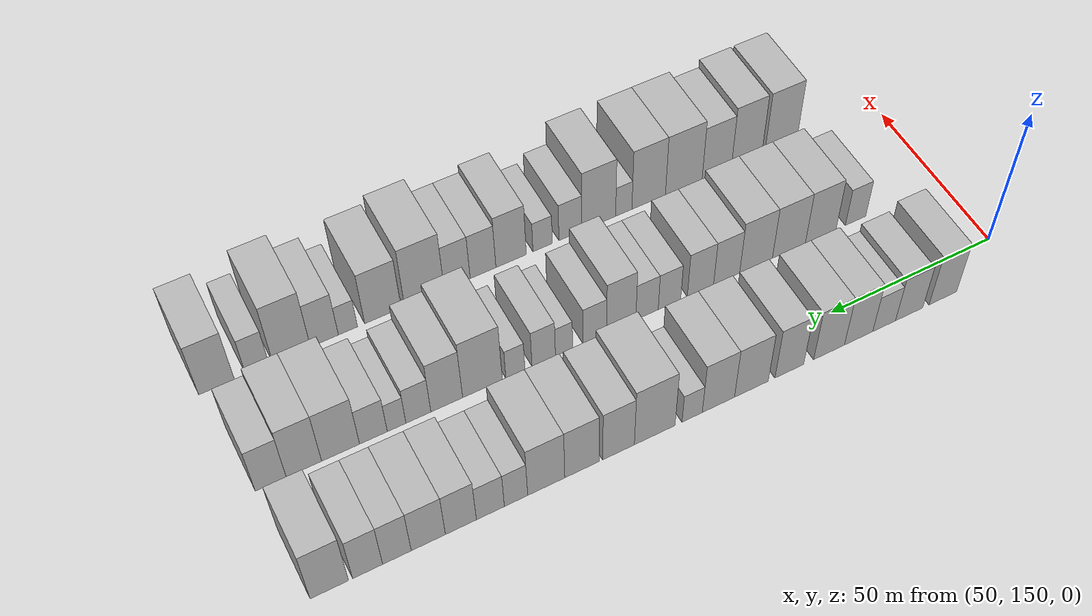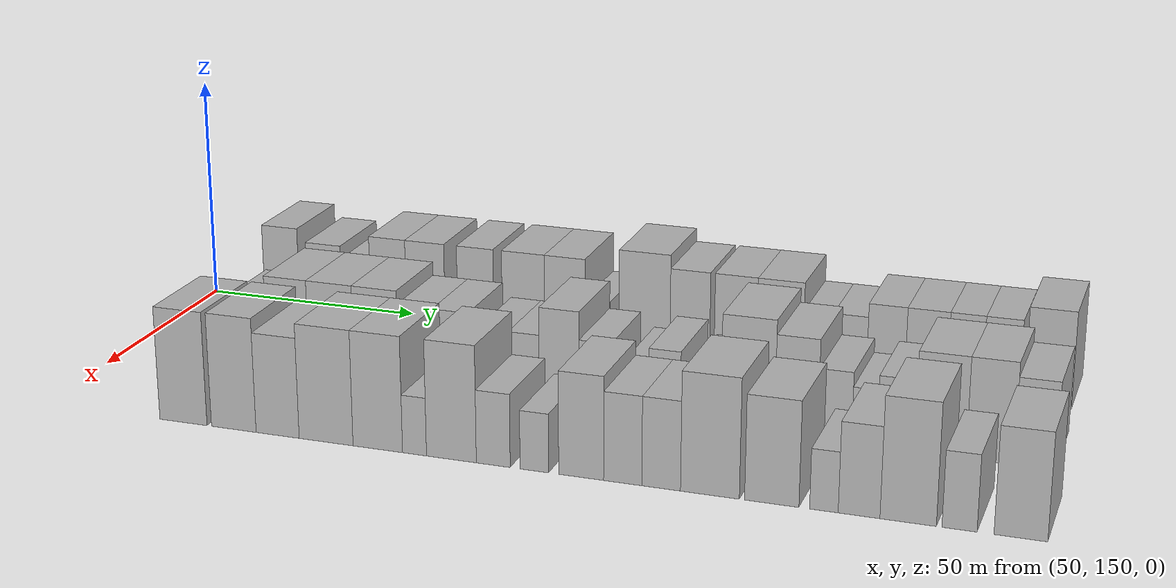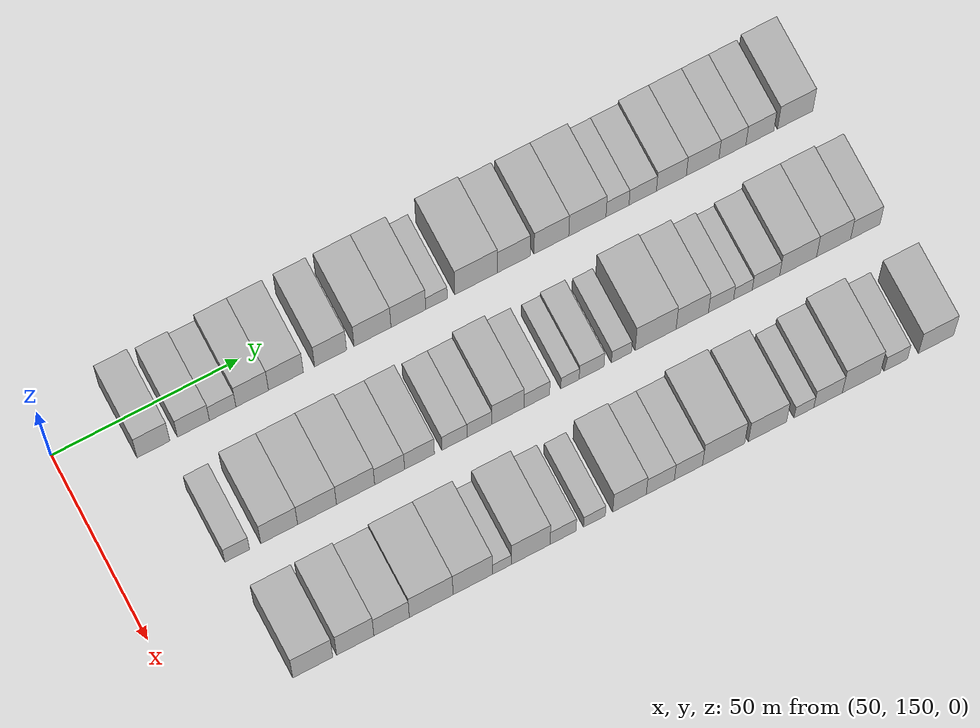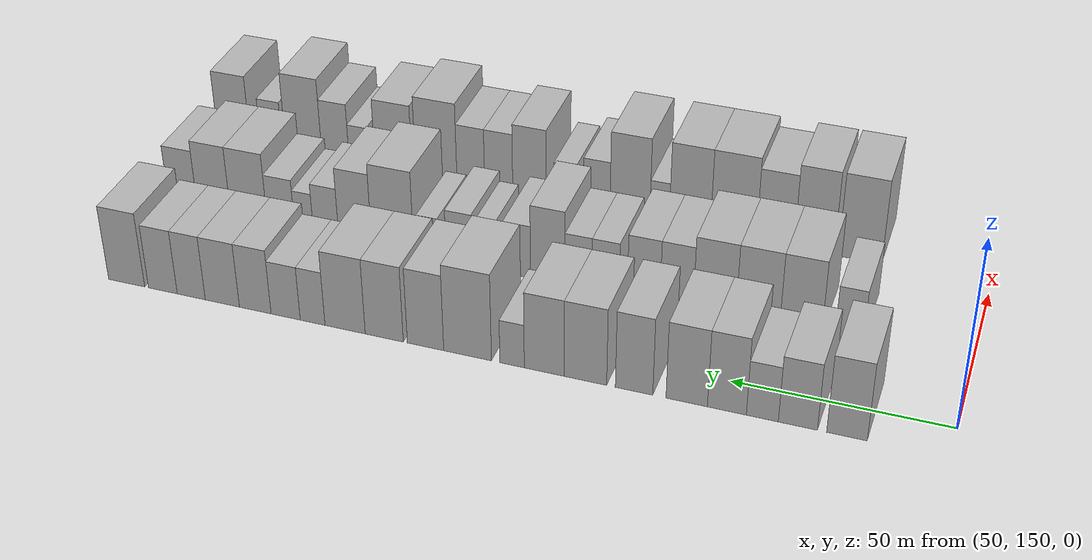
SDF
<sdf version="1.6">
 <world name="default">
  <model name="building_62">
   <static>1</static>
   <pose>50.0000 172.0983 0 0.000000 0.000000 0.000000</pose>
   <link name="link">
    <pose>0 0 10.50 0 0 0</pose>
    <collision name="collision"><geometry><box><size>20.0000 8.7437 21.0000</size></box></geometry></collision>
    <visual name="visual">
     <cast_shadows>0</cast_shadows>
     <geometry><box><size>20.0000 8.7437 21.0000</size></box></geometry>
     <material>
      <script>
       <uri>model://HANNAS_wall/materials/scripts</uri>
       <uri>model://HANNAS_wall/materials/textures</uri>
       <name>vrc/HANNAS_wall</name>
      </script>
     </material>
    </visual>
   </link>
  </model>
  <model name="building_63">
   <static>1</static>
   <pose>50.0000 182.7413 0 0.000000 0.000000 0.000000</pose>
   <link name="link">
    <pose>0 0 9.00 0 0 0</pose>
    <collision name="collision"><geometry><box><size>20.0000 8.5423 18.0000</size></box></geometry></collision>
    <visual name="visual">
     <cast_shadows>0</cast_shadows>
     <geometry><box><size>20.0000 8.5423 18.0000</size></box></geometry>
     <material>
      <script>
       <uri>model://HANNAS_wall/materials/scripts</uri>
       <uri>model://HANNAS_wall/materials/textures</uri>
       <name>vrc/HANNAS_wall</name>
      </script>
     </material>
    </visual>
   </link>
  </model>
  <model name="building_64">
   <static>1</static>
   <pose>50.0000 190.5365 0 0.000000 0.000000 0.000000</pose>
   <link name="link">
    <pose>0 0 7.50 0 0 0</pose>
    <collision name="collision"><geometry><box><size>20.0000 7.0482 15.0000</size></box></geometry></collision>
    <visual name="visual">
     <cast_shadows>0</cast_shadows>
     <geometry><box><size>20.0000 7.0482 15.0000</size></box></geometry>
     <material>
      <script>
       <uri>model://HANNAS_wall/materials/scripts</uri>
       <uri>model://HANNAS_wall/materials/textures</uri>
       <name>vrc/HANNAS_wall</name>
      </script>
     </material>
    </visual>
   </link>
  </model>
  <model name="building_65">
   <static>1</static>
   <pose>50.0000 198.4008 0 0.000000 0.000000 0.000000</pose>
   <link name="link">
    <pose>0 0 10.50 0 0 0</pose>
    <collision name="collision"><geometry><box><size>20.0000 8.6804 21.0000</size></box></geometry></collision>
    <visual name="visual">
     <cast_shadows>0</cast_shadows>
     <geometry><box><size>20.0000 8.6804 21.0000</size></box></geometry>
     <material>
      <script>
       <uri>model://HANNAS_wall/materials/scripts</uri>
       <uri>model://HANNAS_wall/materials/textures</uri>
       <name>vrc/HANNAS_wall</name>
      </script>
     </material>
    </visual>
   </link>
  </model>
  <model name="building_66">
   <static>1</static>
   <pose>50.0000 207.3996 0 0.000000 0.000000 0.000000</pose>
   <link name="link">
    <pose>0 0 10.50 0 0 0</pose>
    <collision name="collision"><geometry><box><size>20.0000 9.3172 21.0000</size></box></geometry></collision>
    <visual name="visual">
     <cast_shadows>0</cast_shadows>
     <geometry><box><size>20.0000 9.3172 21.0000</size></box></geometry>
     <material>
      <script>
       <uri>model://HANNAS_wall/materials/scripts</uri>
       <uri>model://HANNAS_wall/materials/textures</uri>
       <name>vrc/HANNAS_wall</name>
      </script>
     </material>
    </visual>
   </link>
  </model>
  <model name="building_67">
   <static>1</static>
   <pose>50.0000 219.3395 0 0.000000 0.000000 0.000000</pose>
   <link name="link">
    <pose>0 0 10.50 0 0 0</pose>
    <collision name="collision"><geometry><box><size>20.0000 8.5627 21.0000</size></box></geometry></collision>
    <visual name="visual">
     <cast_shadows>0</cast_shadows>
     <geometry><box><size>20.0000 8.5627 21.0000</size></box></geometry>
     <material>
      <script>
       <uri>model://HANNAS_wall/materials/scripts</uri>
       <uri>model://HANNAS_wall/materials/textures</uri>
       <name>vrc/HANNAS_wall</name>
      </script>
     </material>
    </visual>
   </link>
  </model>
  <model name="building_68">
   <static>1</static>
   <pose>50.0000 230.5648 0 0.000000 0.000000 0.000000</pose>
   <link name="link">
    <pose>0 0 10.50 0 0 0</pose>
    <collision name="collision"><geometry><box><size>20.0000 9.8878 21.0000</size></box></geometry></collision>
    <visual name="visual">
     <cast_shadows>0</cast_shadows>
     <geometry><box><size>20.0000 9.8878 21.0000</size></box></geometry>
     <material>
      <script>
       <uri>model://HANNAS_wall/materials/scripts</uri>
       <uri>model://HANNAS_wall/materials/textures</uri>
       <name>vrc/HANNAS_wall</name>
      </script>
     </material>
    </visual>
   </link>
  </model>
  <model name="building_69">
   <static>1</static>
   <pose>50.0000 240.1736 0 0.000000 0.000000 0.000000</pose>
   <link name="link">
    <pose>0 0 10.50 0 0 0</pose>
    <collision name="collision"><geometry><box><size>20.0000 9.3299 21.0000</size></box></geometry></collision>
    <visual name="visual">
     <cast_shadows>0</cast_shadows>
     <geometry><box><size>20.0000 9.3299 21.0000</size></box></geometry>
     <material>
      <script>
       <uri>model://HANNAS_wall/materials/scripts</uri>
       <uri>model://HANNAS_wall/materials/textures</uri>
       <name>vrc/HANNAS_wall</name>
      </script>
     </material>
    </visual>
   </link>
  </model>
  <model name="building_70">
   <static>1</static>
   <pose>50.0000 247.7334 0 0.000000 0.000000 0.000000</pose>
   <link name="link">
    <pose>0 0 6.00 0 0 0</pose>
    <collision name="collision"><geometry><box><size>20.0000 5.7898 12.0000</size></box></geometry></collision>
    <visual name="visual">
     <cast_shadows>0</cast_shadows>
     <geometry><box><size>20.0000 5.7898 12.0000</size></box></geometry>
     <material>
      <script>
       <uri>model://HANNAS_wall/materials/scripts</uri>
       <uri>model://HANNAS_wall/materials/textures</uri>
       <name>vrc/HANNAS_wall</name>
      </script>
     </material>
    </visual>
   </link>
  </model>
  <model name="building_71">
   <static>1</static>
   <pose>50.0000 258.3664 0 0.000000 0.000000 0.000000</pose>
   <link name="link">
    <pose>0 0 12.00 0 0 0</pose>
    <collision name="collision"><geometry><box><size>20.0000 11.4762 24.0000</size></box></geometry></collision>
    <visual name="visual">
     <cast_shadows>0</cast_shadows>
     <geometry><box><size>20.0000 11.4762 24.0000</size></box></geometry>
     <material>
      <script>
       <uri>model://HANNAS_wall/materials/scripts</uri>
       <uri>model://HANNAS_wall/materials/textures</uri>
       <name>vrc/HANNAS_wall</name>
      </script>
     </material>
    </visual>
   </link>
  </model>
  <model name="building_72">
   <static>1</static>
   <pose>50.0000 268.5220 0 0.000000 0.000000 0.000000</pose>
   <link name="link">
    <pose>0 0 10.50 0 0 0</pose>
    <collision name="collision"><geometry><box><size>20.0000 8.8351 21.0000</size></box></geometry></collision>
    <visual name="visual">
     <cast_shadows>0</cast_shadows>
     <geometry><box><size>20.0000 8.8351 21.0000</size></box></geometry>
     <material>
      <script>
       <uri>model://HANNAS_wall/materials/scripts</uri>
       <uri>model://HANNAS_wall/materials/textures</uri>
       <name>vrc/HANNAS_wall</name>
      </script>
     </material>
    </visual>
   </link>
  </model>
  <model name="building_73">
   <static>1</static>
   <pose>50.0000 278.6238 0 0.000000 0.000000 0.000000</pose>
   <link name="link">
    <pose>0 0 10.50 0 0 0</pose>
    <collision name="collision"><geometry><box><size>20.0000 9.3685 21.0000</size></box></geometry></collision>
    <visual name="visual">
     <cast_shadows>0</cast_shadows>
     <geometry><box><size>20.0000 9.3685 21.0000</size></box></geometry>
     <material>
      <script>
       <uri>model://HANNAS_wall/materials/scripts</uri>
       <uri>model://HANNAS_wall/materials/textures</uri>
       <name>vrc/HANNAS_wall</name>
      </script>
     </material>
    </visual>
   </link>
  </model>
  <model name="building_74">
   <static>1</static>
   <pose>50.0000 288.3235 0 0.000000 0.000000 0.000000</pose>
   <link name="link">
    <pose>0 0 10.50 0 0 0</pose>
    <collision name="collision"><geometry><box><size>20.0000 10.0309 21.0000</size></box></geometry></collision>
    <visual name="visual">
     <cast_shadows>0</cast_shadows>
     <geometry><box><size>20.0000 10.0309 21.0000</size></box></geometry>
     <material>
      <script>
       <uri>model://HANNAS_wall/materials/scripts</uri>
       <uri>model://HANNAS_wall/materials/textures</uri>
       <name>vrc/HANNAS_wall</name>
      </script>
     </material>
    </visual>
   </link>
  </model>
  <model name="building_75">
   <static>1</static>
   <pose>50.0000 296.4525 0 0.000000 0.000000 0.000000</pose>
   <link name="link">
    <pose>0 0 7.50 0 0 0</pose>
    <collision name="collision"><geometry><box><size>20.0000 6.2270 15.0000</size></box></geometry></collision>
    <visual name="visual">
     <cast_shadows>0</cast_shadows>
     <geometry><box><size>20.0000 6.2270 15.0000</size></box></geometry>
     <material>
      <script>
       <uri>model://HANNAS_wall/materials/scripts</uri>
       <uri>model://HANNAS_wall/materials/textures</uri>
       <name>vrc/HANNAS_wall</name>
      </script>
     </material>
    </visual>
   </link>
  </model>
  <model name="building_76">
   <static>1</static>
   <pose>50.0000 303.2668 0 0.000000 0.000000 0.000000</pose>
   <link name="link">
    <pose>0 0 7.50 0 0 0</pose>
    <collision name="collision"><geometry><box><size>20.0000 7.4015 15.0000</size></box></geometry></collision>
    <visual name="visual">
     <cast_shadows>0</cast_shadows>
     <geometry><box><size>20.0000 7.4015 15.0000</size></box></geometry>
     <material>
      <script>
       <uri>model://HANNAS_wall/materials/scripts</uri>
       <uri>model://HANNAS_wall/materials/textures</uri>
       <name>vrc/HANNAS_wall</name>
      </script>
     </material>
    </visual>
   </link>
  </model>
  <model name="building_77">
   <static>1</static>
   <pose>50.0000 311.0209 0 0.000000 0.000000 0.000000</pose>
   <link name="link">
    <pose>0 0 9.00 0 0 0</pose>
    <collision name="collision"><geometry><box><size>20.0000 8.1066 18.0000</size></box></geometry></collision>
    <visual name="visual">
     <cast_shadows>0</cast_shadows>
     <geometry><box><size>20.0000 8.1066 18.0000</size></box></geometry>
     <material>
      <script>
       <uri>model://HANNAS_wall/materials/scripts</uri>
       <uri>model://HANNAS_wall/materials/textures</uri>
       <name>vrc/HANNAS_wall</name>
      </script>
     </material>
    </visual>
   </link>
  </model>
  <model name="building_78">
   <static>1</static>
   <pose>50.0000 319.4926 0 0.000000 0.000000 0.000000</pose>
   <link name="link">
    <pose>0 0 9.00 0 0 0</pose>
    <collision name="collision"><geometry><box><size>20.0000 8.8368 18.0000</size></box></geometry></collision>
    <visual name="visual">
     <cast_shadows>0</cast_shadows>
     <geometry><box><size>20.0000 8.8368 18.0000</size></box></geometry>
     <material>
      <script>
       <uri>model://HANNAS_wall/materials/scripts</uri>
       <uri>model://HANNAS_wall/materials/textures</uri>
       <name>vrc/HANNAS_wall</name>
      </script>
     </material>
    </visual>
   </link>
  </model>
  <model name="building_79">
   <static>1</static>
   <pose>50.0000 327.5708 0 0.000000 0.000000 0.000000</pose>
   <link name="link">
    <pose>0 0 9.00 0 0 0</pose>
    <collision name="collision"><geometry><box><size>20.0000 7.3197 18.0000</size></box></geometry></collision>
    <visual name="visual">
     <cast_shadows>0</cast_shadows>
     <geometry><box><size>20.0000 7.3197 18.0000</size></box></geometry>
     <material>
      <script>
       <uri>model://HANNAS_wall/materials/scripts</uri>
       <uri>model://HANNAS_wall/materials/textures</uri>
       <name>vrc/HANNAS_wall</name>
      </script>
     </material>
    </visual>
   </link>
  </model>
  <model name="building_80">
   <static>1</static>
   <pose>50.0000 335.0202 0 0.000000 0.000000 0.000000</pose>
   <link name="link">
    <pose>0 0 9.00 0 0 0</pose>
    <collision name="collision"><geometry><box><size>20.0000 7.5791 18.0000</size></box></geometry></collision>
    <visual name="visual">
     <cast_shadows>0</cast_shadows>
     <geometry><box><size>20.0000 7.5791 18.0000</size></box></geometry>
     <material>
      <script>
       <uri>model://HANNAS_wall/materials/scripts</uri>
       <uri>model://HANNAS_wall/materials/textures</uri>
       <name>vrc/HANNAS_wall</name>
      </script>
     </material>
    </visual>
   </link>
  </model>
  <model name="building_81">
   <static>1</static>
   <pose>50.0000 344.6110 0 0.000000 0.000000 0.000000</pose>
   <link name="link">
    <pose>0 0 10.50 0 0 0</pose>
    <collision name="collision"><geometry><box><size>20.0000 9.6024 21.0000</size></box></geometry></collision>
    <visual name="visual">
     <cast_shadows>0</cast_shadows>
     <geometry><box><size>20.0000 9.6024 21.0000</size></box></geometry>
     <material>
      <script>
       <uri>model://HANNAS_wall/materials/scripts</uri>
       <uri>model://HANNAS_wall/materials/textures</uri>
       <name>vrc/HANNAS_wall</name>
      </script>
     </material>
    </visual>
   </link>
  </model>
  <model name="building_140">
   <static>1</static>
   <pose>82.0000 177.8730 0 0.000000 0.000000 0.000000</pose>
   <link name="link">
    <pose>0 0 7.50 0 0 0</pose>
    <collision name="collision"><geometry><box><size>20.0000 6.5550 15.0000</size></box></geometry></collision>
    <visual name="visual">
     <cast_shadows>0</cast_shadows>
     <geometry><box><size>20.0000 6.5550 15.0000</size></box></geometry>
     <material>
      <script>
       <uri>model://HANNAS_wall/materials/scripts</uri>
       <uri>model://HANNAS_wall/materials/textures</uri>
       <name>vrc/HANNAS_wall</name>
      </script>
     </material>
    </visual>
   </link>
  </model>
  <model name="building_141">
   <static>1</static>
   <pose>82.0000 189.0388 0 0.000000 0.000000 0.000000</pose>
   <link name="link">
    <pose>0 0 10.50 0 0 0</pose>
    <collision name="collision"><geometry><box><size>20.0000 9.7765 21.0000</size></box></geometry></collision>
    <visual name="visual">
     <cast_shadows>0</cast_shadows>
     <geometry><box><size>20.0000 9.7765 21.0000</size></box></geometry>
     <material>
      <script>
       <uri>model://HANNAS_wall/materials/scripts</uri>
       <uri>model://HANNAS_wall/materials/textures</uri>
       <name>vrc/HANNAS_wall</name>
      </script>
     </material>
    </visual>
   </link>
  </model>
  <model name="building_142">
   <static>1</static>
   <pose>82.0000 199.1031 0 0.000000 0.000000 0.000000</pose>
   <link name="link">
    <pose>0 0 10.50 0 0 0</pose>
    <collision name="collision"><geometry><box><size>20.0000 10.3522 21.0000</size></box></geometry></collision>
    <visual name="visual">
     <cast_shadows>0</cast_shadows>
     <geometry><box><size>20.0000 10.3522 21.0000</size></box></geometry>
     <material>
      <script>
       <uri>model://HANNAS_wall/materials/scripts</uri>
       <uri>model://HANNAS_wall/materials/textures</uri>
       <name>vrc/HANNAS_wall</name>
      </script>
     </material>
    </visual>
   </link>
  </model>
  <model name="building_143">
   <static>1</static>
   <pose>82.0000 209.3619 0 0.000000 0.000000 0.000000</pose>
   <link name="link">
    <pose>0 0 10.50 0 0 0</pose>
    <collision name="collision"><geometry><box><size>20.0000 10.1655 21.0000</size></box></geometry></collision>
    <visual name="visual">
     <cast_shadows>0</cast_shadows>
     <geometry><box><size>20.0000 10.1655 21.0000</size></box></geometry>
     <material>
      <script>
       <uri>model://HANNAS_wall/materials/scripts</uri>
       <uri>model://HANNAS_wall/materials/textures</uri>
       <name>vrc/HANNAS_wall</name>
      </script>
     </material>
    </visual>
   </link>
  </model>
  <model name="building_144">
   <static>1</static>
   <pose>82.0000 218.4372 0 0.000000 0.000000 0.000000</pose>
   <link name="link">
    <pose>0 0 9.00 0 0 0</pose>
    <collision name="collision"><geometry><box><size>20.0000 7.9851 18.0000</size></box></geometry></collision>
    <visual name="visual">
     <cast_shadows>0</cast_shadows>
     <geometry><box><size>20.0000 7.9851 18.0000</size></box></geometry>
     <material>
      <script>
       <uri>model://HANNAS_wall/materials/scripts</uri>
       <uri>model://HANNAS_wall/materials/textures</uri>
       <name>vrc/HANNAS_wall</name>
      </script>
     </material>
    </visual>
   </link>
  </model>
  <model name="building_145">
   <static>1</static>
   <pose>82.0000 226.4084 0 0.000000 0.000000 0.000000</pose>
   <link name="link">
    <pose>0 0 9.00 0 0 0</pose>
    <collision name="collision"><geometry><box><size>20.0000 7.9573 18.0000</size></box></geometry></collision>
    <visual name="visual">
     <cast_shadows>0</cast_shadows>
     <geometry><box><size>20.0000 7.9573 18.0000</size></box></geometry>
     <material>
      <script>
       <uri>model://HANNAS_wall/materials/scripts</uri>
       <uri>model://HANNAS_wall/materials/textures</uri>
       <name>vrc/HANNAS_wall</name>
      </script>
     </material>
    </visual>
   </link>
  </model>
  <model name="building_146">
   <static>1</static>
   <pose>82.0000 235.7491 0 0.000000 0.000000 0.000000</pose>
   <link name="link">
    <pose>0 0 7.50 0 0 0</pose>
    <collision name="collision"><geometry><box><size>20.0000 6.7240 15.0000</size></box></geometry></collision>
    <visual name="visual">
     <cast_shadows>0</cast_shadows>
     <geometry><box><size>20.0000 6.7240 15.0000</size></box></geometry>
     <material>
      <script>
       <uri>model://HANNAS_wall/materials/scripts</uri>
       <uri>model://HANNAS_wall/materials/textures</uri>
       <name>vrc/HANNAS_wall</name>
      </script>
     </material>
    </visual>
   </link>
  </model>
  <model name="building_147">
   <static>1</static>
   <pose>82.0000 242.4390 0 0.000000 0.000000 0.000000</pose>
   <link name="link">
    <pose>0 0 7.50 0 0 0</pose>
    <collision name="collision"><geometry><box><size>20.0000 6.6559 15.0000</size></box></geometry></collision>
    <visual name="visual">
     <cast_shadows>0</cast_shadows>
     <geometry><box><size>20.0000 6.6559 15.0000</size></box></geometry>
     <material>
      <script>
       <uri>model://HANNAS_wall/materials/scripts</uri>
       <uri>model://HANNAS_wall/materials/textures</uri>
       <name>vrc/HANNAS_wall</name>
      </script>
     </material>
    </visual>
   </link>
  </model>
  <model name="building_148">
   <static>1</static>
   <pose>82.0000 250.0694 0 0.000000 0.000000 0.000000</pose>
   <link name="link">
    <pose>0 0 10.50 0 0 0</pose>
    <collision name="collision"><geometry><box><size>20.0000 8.6049 21.0000</size></box></geometry></collision>
    <visual name="visual">
     <cast_shadows>0</cast_shadows>
     <geometry><box><size>20.0000 8.6049 21.0000</size></box></geometry>
     <material>
      <script>
       <uri>model://HANNAS_wall/materials/scripts</uri>
       <uri>model://HANNAS_wall/materials/textures</uri>
       <name>vrc/HANNAS_wall</name>
      </script>
     </material>
    </visual>
   </link>
  </model>
  <model name="building_149">
   <static>1</static>
   <pose>82.0000 257.7921 0 0.000000 0.000000 0.000000</pose>
   <link name="link">
    <pose>0 0 7.50 0 0 0</pose>
    <collision name="collision"><geometry><box><size>20.0000 6.8405 15.0000</size></box></geometry></collision>
    <visual name="visual">
     <cast_shadows>0</cast_shadows>
     <geometry><box><size>20.0000 6.8405 15.0000</size></box></geometry>
     <material>
      <script>
       <uri>model://HANNAS_wall/materials/scripts</uri>
       <uri>model://HANNAS_wall/materials/textures</uri>
       <name>vrc/HANNAS_wall</name>
      </script>
     </material>
    </visual>
   </link>
  </model>
  <model name="building_150">
   <static>1</static>
   <pose>82.0000 266.6712 0 0.000000 0.000000 0.000000</pose>
   <link name="link">
    <pose>0 0 6.00 0 0 0</pose>
    <collision name="collision"><geometry><box><size>20.0000 4.9177 12.0000</size></box></geometry></collision>
    <visual name="visual">
     <cast_shadows>0</cast_shadows>
     <geometry><box><size>20.0000 4.9177 12.0000</size></box></geometry>
     <material>
      <script>
       <uri>model://HANNAS_wall/materials/scripts</uri>
       <uri>model://HANNAS_wall/materials/textures</uri>
       <name>vrc/HANNAS_wall</name>
      </script>
     </material>
    </visual>
   </link>
  </model>
  <model name="building_151">
   <static>1</static>
   <pose>82.0000 272.4673 0 0.000000 0.000000 0.000000</pose>
   <link name="link">
    <pose>0 0 7.50 0 0 0</pose>
    <collision name="collision"><geometry><box><size>20.0000 6.6744 15.0000</size></box></geometry></collision>
    <visual name="visual">
     <cast_shadows>0</cast_shadows>
     <geometry><box><size>20.0000 6.6744 15.0000</size></box></geometry>
     <material>
      <script>
       <uri>model://HANNAS_wall/materials/scripts</uri>
       <uri>model://HANNAS_wall/materials/textures</uri>
       <name>vrc/HANNAS_wall</name>
      </script>
     </material>
    </visual>
   </link>
  </model>
  <model name="building_152">
   <static>1</static>
   <pose>82.0000 280.4927 0 0.000000 0.000000 0.000000</pose>
   <link name="link">
    <pose>0 0 6.00 0 0 0</pose>
    <collision name="collision"><geometry><box><size>20.0000 5.3763 12.0000</size></box></geometry></collision>
    <visual name="visual">
     <cast_shadows>0</cast_shadows>
     <geometry><box><size>20.0000 5.3763 12.0000</size></box></geometry>
     <material>
      <script>
       <uri>model://HANNAS_wall/materials/scripts</uri>
       <uri>model://HANNAS_wall/materials/textures</uri>
       <name>vrc/HANNAS_wall</name>
      </script>
     </material>
    </visual>
   </link>
  </model>
  <model name="building_153">
   <static>1</static>
   <pose>82.0000 289.6909 0 0.000000 0.000000 0.000000</pose>
   <link name="link">
    <pose>0 0 12.00 0 0 0</pose>
    <collision name="collision"><geometry><box><size>20.0000 11.0202 24.0000</size></box></geometry></collision>
    <visual name="visual">
     <cast_shadows>0</cast_shadows>
     <geometry><box><size>20.0000 11.0202 24.0000</size></box></geometry>
     <material>
      <script>
       <uri>model://HANNAS_wall/materials/scripts</uri>
       <uri>model://HANNAS_wall/materials/textures</uri>
       <name>vrc/HANNAS_wall</name>
      </script>
     </material>
    </visual>
   </link>
  </model>
  <model name="building_154">
   <static>1</static>
   <pose>82.0000 299.5650 0 0.000000 0.000000 0.000000</pose>
   <link name="link">
    <pose>0 0 10.50 0 0 0</pose>
    <collision name="collision"><geometry><box><size>20.0000 8.7280 21.0000</size></box></geometry></collision>
    <visual name="visual">
     <cast_shadows>0</cast_shadows>
     <geometry><box><size>20.0000 8.7280 21.0000</size></box></geometry>
     <material>
      <script>
       <uri>model://HANNAS_wall/materials/scripts</uri>
       <uri>model://HANNAS_wall/materials/textures</uri>
       <name>vrc/HANNAS_wall</name>
      </script>
     </material>
    </visual>
   </link>
  </model>
  <model name="building_155">
   <static>1</static>
   <pose>82.0000 307.3139 0 0.000000 0.000000 0.000000</pose>
   <link name="link">
    <pose>0 0 7.50 0 0 0</pose>
    <collision name="collision"><geometry><box><size>20.0000 6.7699 15.0000</size></box></geometry></collision>
    <visual name="visual">
     <cast_shadows>0</cast_shadows>
     <geometry><box><size>20.0000 6.7699 15.0000</size></box></geometry>
     <material>
      <script>
       <uri>model://HANNAS_wall/materials/scripts</uri>
       <uri>model://HANNAS_wall/materials/textures</uri>
       <name>vrc/HANNAS_wall</name>
      </script>
     </material>
    </visual>
   </link>
  </model>
  <model name="building_156">
   <static>1</static>
   <pose>82.0000 313.2112 0 0.000000 0.000000 0.000000</pose>
   <link name="link">
    <pose>0 0 6.00 0 0 0</pose>
    <collision name="collision"><geometry><box><size>20.0000 5.0245 12.0000</size></box></geometry></collision>
    <visual name="visual">
     <cast_shadows>0</cast_shadows>
     <geometry><box><size>20.0000 5.0245 12.0000</size></box></geometry>
     <material>
      <script>
       <uri>model://HANNAS_wall/materials/scripts</uri>
       <uri>model://HANNAS_wall/materials/textures</uri>
       <name>vrc/HANNAS_wall</name>
      </script>
     </material>
    </visual>
   </link>
  </model>
  <model name="building_157">
   <static>1</static>
   <pose>82.0000 319.4273 0 0.000000 0.000000 0.000000</pose>
   <link name="link">
    <pose>0 0 7.50 0 0 0</pose>
    <collision name="collision"><geometry><box><size>20.0000 7.4079 15.0000</size></box></geometry></collision>
    <visual name="visual">
     <cast_shadows>0</cast_shadows>
     <geometry><box><size>20.0000 7.4079 15.0000</size></box></geometry>
     <material>
      <script>
       <uri>model://HANNAS_wall/materials/scripts</uri>
       <uri>model://HANNAS_wall/materials/textures</uri>
       <name>vrc/HANNAS_wall</name>
      </script>
     </material>
    </visual>
   </link>
  </model>
  <model name="building_158">
   <static>1</static>
   <pose>82.0000 328.1347 0 0.000000 0.000000 0.000000</pose>
   <link name="link">
    <pose>0 0 10.50 0 0 0</pose>
    <collision name="collision"><geometry><box><size>20.0000 10.0068 21.0000</size></box></geometry></collision>
    <visual name="visual">
     <cast_shadows>0</cast_shadows>
     <geometry><box><size>20.0000 10.0068 21.0000</size></box></geometry>
     <material>
      <script>
       <uri>model://HANNAS_wall/materials/scripts</uri>
       <uri>model://HANNAS_wall/materials/textures</uri>
       <name>vrc/HANNAS_wall</name>
      </script>
     </material>
    </visual>
   </link>
  </model>
  <model name="building_159">
   <static>1</static>
   <pose>82.0000 337.7338 0 0.000000 0.000000 0.000000</pose>
   <link name="link">
    <pose>0 0 10.50 0 0 0</pose>
    <collision name="collision"><geometry><box><size>20.0000 9.1914 21.0000</size></box></geometry></collision>
    <visual name="visual">
     <cast_shadows>0</cast_shadows>
     <geometry><box><size>20.0000 9.1914 21.0000</size></box></geometry>
     <material>
      <script>
       <uri>model://HANNAS_wall/materials/scripts</uri>
       <uri>model://HANNAS_wall/materials/textures</uri>
       <name>vrc/HANNAS_wall</name>
      </script>
     </material>
    </visual>
   </link>
  </model>
  <model name="building_160">
   <static>1</static>
   <pose>82.0000 346.3186 0 0.000000 0.000000 0.000000</pose>
   <link name="link">
    <pose>0 0 9.00 0 0 0</pose>
    <collision name="collision"><geometry><box><size>20.0000 7.9782 18.0000</size></box></geometry></collision>
    <visual name="visual">
     <cast_shadows>0</cast_shadows>
     <geometry><box><size>20.0000 7.9782 18.0000</size></box></geometry>
     <material>
      <script>
       <uri>model://HANNAS_wall/materials/scripts</uri>
       <uri>model://HANNAS_wall/materials/textures</uri>
       <name>vrc/HANNAS_wall</name>
      </script>
     </material>
    </visual>
   </link>
  </model>
  <model name="building_224">
   <static>1</static>
   <pose>114.0000 181.3567 0 0.000000 0.000000 0.000000</pose>
   <link name="link">
    <pose>0 0 12.00 0 0 0</pose>
    <collision name="collision"><geometry><box><size>20.0000 10.5898 24.0000</size></box></geometry></collision>
    <visual name="visual">
     <cast_shadows>0</cast_shadows>
     <geometry><box><size>20.0000 10.5898 24.0000</size></box></geometry>
     <material>
      <script>
       <uri>model://HANNAS_wall/materials/scripts</uri>
       <uri>model://HANNAS_wall/materials/textures</uri>
       <name>vrc/HANNAS_wall</name>
      </script>
     </material>
    </visual>
   </link>
  </model>
  <model name="building_225">
   <static>1</static>
   <pose>114.0000 192.5938 0 0.000000 0.000000 0.000000</pose>
   <link name="link">
    <pose>0 0 12.00 0 0 0</pose>
    <collision name="collision"><geometry><box><size>20.0000 9.8843 24.0000</size></box></geometry></collision>
    <visual name="visual">
     <cast_shadows>0</cast_shadows>
     <geometry><box><size>20.0000 9.8843 24.0000</size></box></geometry>
     <material>
      <script>
       <uri>model://HANNAS_wall/materials/scripts</uri>
       <uri>model://HANNAS_wall/materials/textures</uri>
       <name>vrc/HANNAS_wall</name>
      </script>
     </material>
    </visual>
   </link>
  </model>
  <model name="building_226">
   <static>1</static>
   <pose>114.0000 202.2415 0 0.000000 0.000000 0.000000</pose>
   <link name="link">
    <pose>0 0 10.50 0 0 0</pose>
    <collision name="collision"><geometry><box><size>20.0000 9.4111 21.0000</size></box></geometry></collision>
    <visual name="visual">
     <cast_shadows>0</cast_shadows>
     <geometry><box><size>20.0000 9.4111 21.0000</size></box></geometry>
     <material>
      <script>
       <uri>model://HANNAS_wall/materials/scripts</uri>
       <uri>model://HANNAS_wall/materials/textures</uri>
       <name>vrc/HANNAS_wall</name>
      </script>
     </material>
    </visual>
   </link>
  </model>
  <model name="building_227">
   <static>1</static>
   <pose>114.0000 212.7495 0 0.000000 0.000000 0.000000</pose>
   <link name="link">
    <pose>0 0 12.00 0 0 0</pose>
    <collision name="collision"><geometry><box><size>20.0000 11.6050 24.0000</size></box></geometry></collision>
    <visual name="visual">
     <cast_shadows>0</cast_shadows>
     <geometry><box><size>20.0000 11.6050 24.0000</size></box></geometry>
     <material>
      <script>
       <uri>model://HANNAS_wall/materials/scripts</uri>
       <uri>model://HANNAS_wall/materials/textures</uri>
       <name>vrc/HANNAS_wall</name>
      </script>
     </material>
    </visual>
   </link>
  </model>
  <model name="building_228">
   <static>1</static>
   <pose>114.0000 223.7961 0 0.000000 0.000000 0.000000</pose>
   <link name="link">
    <pose>0 0 12.00 0 0 0</pose>
    <collision name="collision"><geometry><box><size>20.0000 10.4883 24.0000</size></box></geometry></collision>
    <visual name="visual">
     <cast_shadows>0</cast_shadows>
     <geometry><box><size>20.0000 10.4883 24.0000</size></box></geometry>
     <material>
      <script>
       <uri>model://HANNAS_wall/materials/scripts</uri>
       <uri>model://HANNAS_wall/materials/textures</uri>
       <name>vrc/HANNAS_wall</name>
      </script>
     </material>
    </visual>
   </link>
  </model>
  <model name="building_229">
   <static>1</static>
   <pose>114.0000 231.5514 0 0.000000 0.000000 0.000000</pose>
   <link name="link">
    <pose>0 0 6.00 0 0 0</pose>
    <collision name="collision"><geometry><box><size>20.0000 5.0223 12.0000</size></box></geometry></collision>
    <visual name="visual">
     <cast_shadows>0</cast_shadows>
     <geometry><box><size>20.0000 5.0223 12.0000</size></box></geometry>
     <material>
      <script>
       <uri>model://HANNAS_wall/materials/scripts</uri>
       <uri>model://HANNAS_wall/materials/textures</uri>
       <name>vrc/HANNAS_wall</name>
      </script>
     </material>
    </visual>
   </link>
  </model>
  <model name="building_230">
   <static>1</static>
   <pose>114.0000 239.2298 0 0.000000 0.000000 0.000000</pose>
   <link name="link">
    <pose>0 0 12.00 0 0 0</pose>
    <collision name="collision"><geometry><box><size>20.0000 10.3345 24.0000</size></box></geometry></collision>
    <visual name="visual">
     <cast_shadows>0</cast_shadows>
     <geometry><box><size>20.0000 10.3345 24.0000</size></box></geometry>
     <material>
      <script>
       <uri>model://HANNAS_wall/materials/scripts</uri>
       <uri>model://HANNAS_wall/materials/textures</uri>
       <name>vrc/HANNAS_wall</name>
      </script>
     </material>
    </visual>
   </link>
  </model>
  <model name="building_231">
   <static>1</static>
   <pose>114.0000 247.8672 0 0.000000 0.000000 0.000000</pose>
   <link name="link">
    <pose>0 0 7.50 0 0 0</pose>
    <collision name="collision"><geometry><box><size>20.0000 6.9403 15.0000</size></box></geometry></collision>
    <visual name="visual">
     <cast_shadows>0</cast_shadows>
     <geometry><box><size>20.0000 6.9403 15.0000</size></box></geometry>
     <material>
      <script>
       <uri>model://HANNAS_wall/materials/scripts</uri>
       <uri>model://HANNAS_wall/materials/textures</uri>
       <name>vrc/HANNAS_wall</name>
      </script>
     </material>
    </visual>
   </link>
  </model>
  <model name="building_232">
   <static>1</static>
   <pose>114.0000 256.2390 0 0.000000 0.000000 0.000000</pose>
   <link name="link">
    <pose>0 0 6.00 0 0 0</pose>
    <collision name="collision"><geometry><box><size>20.0000 5.8032 12.0000</size></box></geometry></collision>
    <visual name="visual">
     <cast_shadows>0</cast_shadows>
     <geometry><box><size>20.0000 5.8032 12.0000</size></box></geometry>
     <material>
      <script>
       <uri>model://HANNAS_wall/materials/scripts</uri>
       <uri>model://HANNAS_wall/materials/textures</uri>
       <name>vrc/HANNAS_wall</name>
      </script>
     </material>
    </visual>
   </link>
  </model>
  <model name="building_233">
   <static>1</static>
   <pose>114.0000 265.6247 0 0.000000 0.000000 0.000000</pose>
   <link name="link">
    <pose>0 0 10.50 0 0 0</pose>
    <collision name="collision"><geometry><box><size>20.0000 8.9683 21.0000</size></box></geometry></collision>
    <visual name="visual">
     <cast_shadows>0</cast_shadows>
     <geometry><box><size>20.0000 8.9683 21.0000</size></box></geometry>
     <material>
      <script>
       <uri>model://HANNAS_wall/materials/scripts</uri>
       <uri>model://HANNAS_wall/materials/textures</uri>
       <name>vrc/HANNAS_wall</name>
      </script>
     </material>
    </visual>
   </link>
  </model>
  <model name="building_234">
   <static>1</static>
   <pose>114.0000 273.8728 0 0.000000 0.000000 0.000000</pose>
   <link name="link">
    <pose>0 0 9.00 0 0 0</pose>
    <collision name="collision"><geometry><box><size>20.0000 7.5279 18.0000</size></box></geometry></collision>
    <visual name="visual">
     <cast_shadows>0</cast_shadows>
     <geometry><box><size>20.0000 7.5279 18.0000</size></box></geometry>
     <material>
      <script>
       <uri>model://HANNAS_wall/materials/scripts</uri>
       <uri>model://HANNAS_wall/materials/textures</uri>
       <name>vrc/HANNAS_wall</name>
      </script>
     </material>
    </visual>
   </link>
  </model>
  <model name="building_235">
   <static>1</static>
   <pose>114.0000 281.4111 0 0.000000 0.000000 0.000000</pose>
   <link name="link">
    <pose>0 0 9.00 0 0 0</pose>
    <collision name="collision"><geometry><box><size>20.0000 7.5487 18.0000</size></box></geometry></collision>
    <visual name="visual">
     <cast_shadows>0</cast_shadows>
     <geometry><box><size>20.0000 7.5487 18.0000</size></box></geometry>
     <material>
      <script>
       <uri>model://HANNAS_wall/materials/scripts</uri>
       <uri>model://HANNAS_wall/materials/textures</uri>
       <name>vrc/HANNAS_wall</name>
      </script>
     </material>
    </visual>
   </link>
  </model>
  <model name="building_236">
   <static>1</static>
   <pose>114.0000 290.8432 0 0.000000 0.000000 0.000000</pose>
   <link name="link">
    <pose>0 0 12.00 0 0 0</pose>
    <collision name="collision"><geometry><box><size>20.0000 11.3155 24.0000</size></box></geometry></collision>
    <visual name="visual">
     <cast_shadows>0</cast_shadows>
     <geometry><box><size>20.0000 11.3155 24.0000</size></box></geometry>
     <material>
      <script>
       <uri>model://HANNAS_wall/materials/scripts</uri>
       <uri>model://HANNAS_wall/materials/textures</uri>
       <name>vrc/HANNAS_wall</name>
      </script>
     </material>
    </visual>
   </link>
  </model>
  <model name="building_237">
   <static>1</static>
   <pose>114.0000 302.6350 0 0.000000 0.000000 0.000000</pose>
   <link name="link">
    <pose>0 0 10.50 0 0 0</pose>
    <collision name="collision"><geometry><box><size>20.0000 10.2679 21.0000</size></box></geometry></collision>
    <visual name="visual">
     <cast_shadows>0</cast_shadows>
     <geometry><box><size>20.0000 10.2679 21.0000</size></box></geometry>
     <material>
      <script>
       <uri>model://HANNAS_wall/materials/scripts</uri>
       <uri>model://HANNAS_wall/materials/textures</uri>
       <name>vrc/HANNAS_wall</name>
      </script>
     </material>
    </visual>
   </link>
  </model>
  <model name="building_238">
   <static>1</static>
   <pose>114.0000 312.4285 0 0.000000 0.000000 0.000000</pose>
   <link name="link">
    <pose>0 0 6.00 0 0 0</pose>
    <collision name="collision"><geometry><box><size>20.0000 5.3192 12.0000</size></box></geometry></collision>
    <visual name="visual">
     <cast_shadows>0</cast_shadows>
     <geometry><box><size>20.0000 5.3192 12.0000</size></box></geometry>
     <material>
      <script>
       <uri>model://HANNAS_wall/materials/scripts</uri>
       <uri>model://HANNAS_wall/materials/textures</uri>
       <name>vrc/HANNAS_wall</name>
      </script>
     </material>
    </visual>
   </link>
  </model>
  <model name="building_239">
   <static>1</static>
   <pose>114.0000 318.9371 0 0.000000 0.000000 0.000000</pose>
   <link name="link">
    <pose>0 0 9.00 0 0 0</pose>
    <collision name="collision"><geometry><box><size>20.0000 7.6981 18.0000</size></box></geometry></collision>
    <visual name="visual">
     <cast_shadows>0</cast_shadows>
     <geometry><box><size>20.0000 7.6981 18.0000</size></box></geometry>
     <material>
      <script>
       <uri>model://HANNAS_wall/materials/scripts</uri>
       <uri>model://HANNAS_wall/materials/textures</uri>
       <name>vrc/HANNAS_wall</name>
      </script>
     </material>
    </visual>
   </link>
  </model>
  <model name="building_240">
   <static>1</static>
   <pose>114.0000 327.9174 0 0.000000 0.000000 0.000000</pose>
   <link name="link">
    <pose>0 0 12.00 0 0 0</pose>
    <collision name="collision"><geometry><box><size>20.0000 10.2626 24.0000</size></box></geometry></collision>
    <visual name="visual">
     <cast_shadows>0</cast_shadows>
     <geometry><box><size>20.0000 10.2626 24.0000</size></box></geometry>
     <material>
      <script>
       <uri>model://HANNAS_wall/materials/scripts</uri>
       <uri>model://HANNAS_wall/materials/textures</uri>
       <name>vrc/HANNAS_wall</name>
      </script>
     </material>
    </visual>
   </link>
  </model>
  <model name="building_241">
   <static>1</static>
   <pose>114.0000 337.2005 0 0.000000 0.000000 0.000000</pose>
   <link name="link">
    <pose>0 0 7.50 0 0 0</pose>
    <collision name="collision"><geometry><box><size>20.0000 6.3036 15.0000</size></box></geometry></collision>
    <visual name="visual">
     <cast_shadows>0</cast_shadows>
     <geometry><box><size>20.0000 6.3036 15.0000</size></box></geometry>
     <material>
      <script>
       <uri>model://HANNAS_wall/materials/scripts</uri>
       <uri>model://HANNAS_wall/materials/textures</uri>
       <name>vrc/HANNAS_wall</name>
      </script>
     </material>
    </visual>
   </link>
  </model>
  <model name="building_242">
   <static>1</static>
   <pose>114.0000 348.1015 0 0.000000 0.000000 0.000000</pose>
   <link name="link">
    <pose>0 0 10.50 0 0 0</pose>
    <collision name="collision"><geometry><box><size>20.0000 9.4983 21.0000</size></box></geometry></collision>
    <visual name="visual">
     <cast_shadows>0</cast_shadows>
     <geometry><box><size>20.0000 9.4983 21.0000</size></box></geometry>
     <material>
      <script>
       <uri>model://HANNAS_wall/materials/scripts</uri>
       <uri>model://HANNAS_wall/materials/textures</uri>
       <name>vrc/HANNAS_wall</name>
      </script>
     </material>
    </visual>
   </link>
  </model>
 </world>
</sdf>
